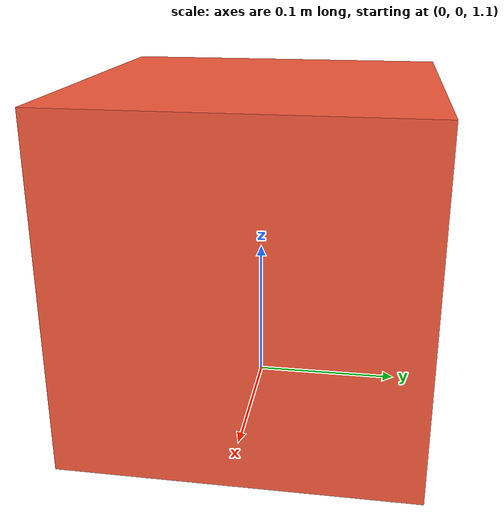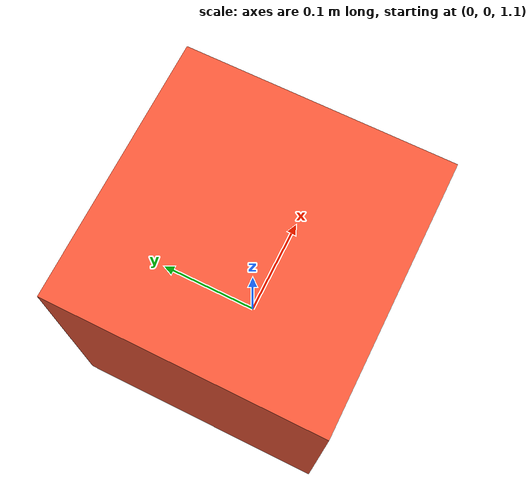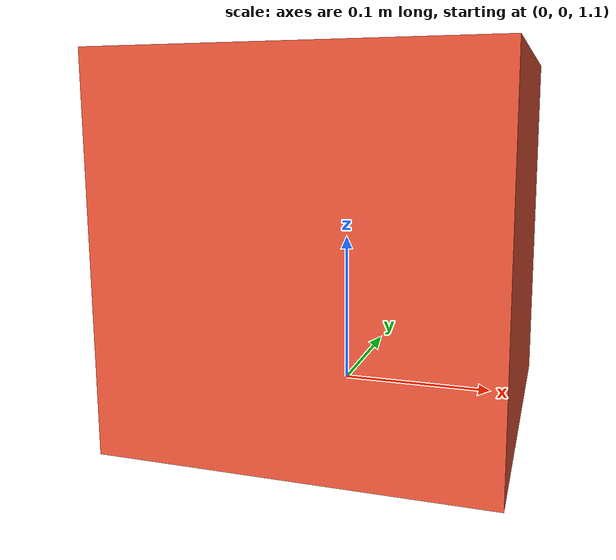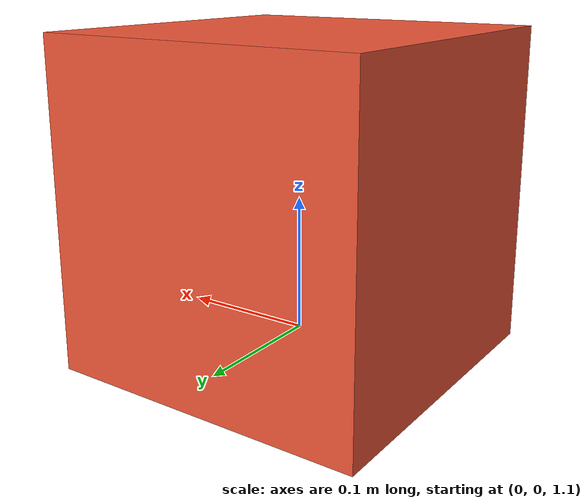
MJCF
<mujoco model="stage1_free_fall_box">
  <compiler angle="degree"/>
  <option timestep="0.002" gravity="0 0 -9.81"/>

  <asset>
    <texture name="grid" type="2d" builtin="checker" rgb1="0.16 0.18 0.20" rgb2="0.28 0.30 0.32" width="300" height="300"/>
    <material name="grid" texture="grid" texrepeat="4 4" reflectance="0.15"/>
  </asset>

  <worldbody>
    <light name="key" pos="0 -3 4" dir="0 1 -1"/>
    <camera name="demo" pos="0 -2.4 1.0" xyaxes="1 0 0 0 0 1"/>
    <geom name="floor" type="plane" size="1.5 1.5 0.02" material="grid"/>

    <body name="box" pos="0 0 1.2">
      <freejoint name="box_free"/>
      <geom name="box_geom" type="box" size="0.12 0.12 0.12" mass="1.0" rgba="0.95 0.34 0.22 1"/>
    </body>
  </worldbody>
</mujoco>
